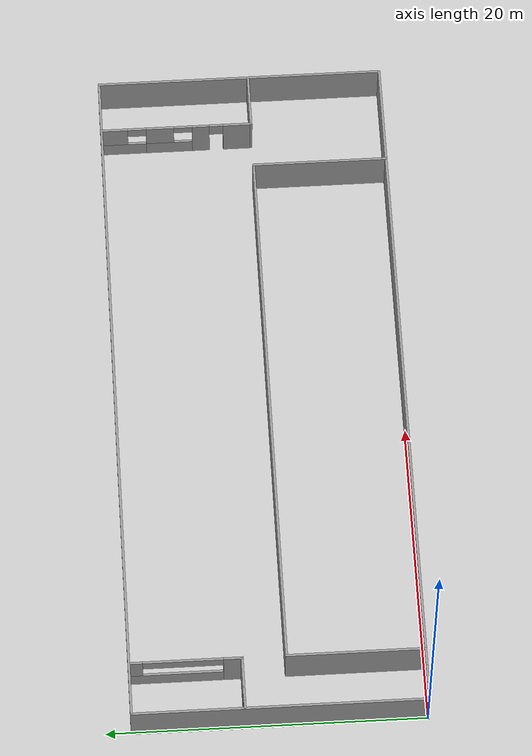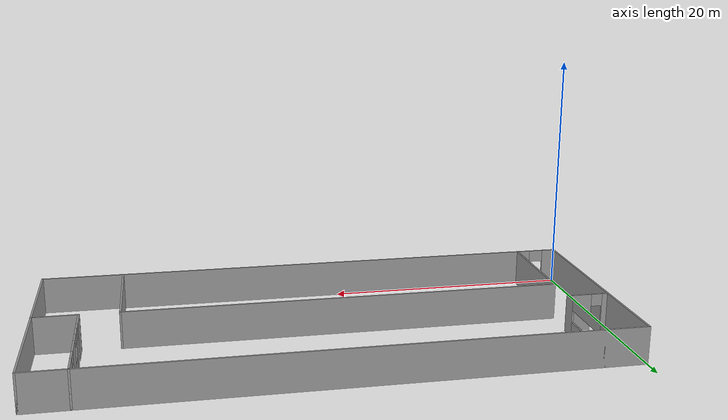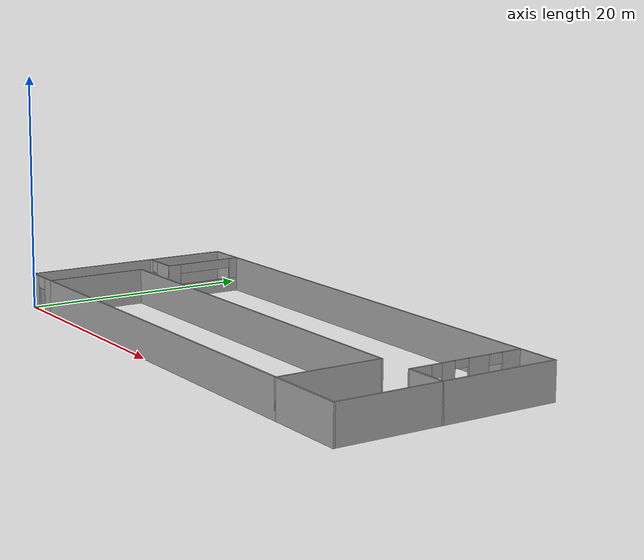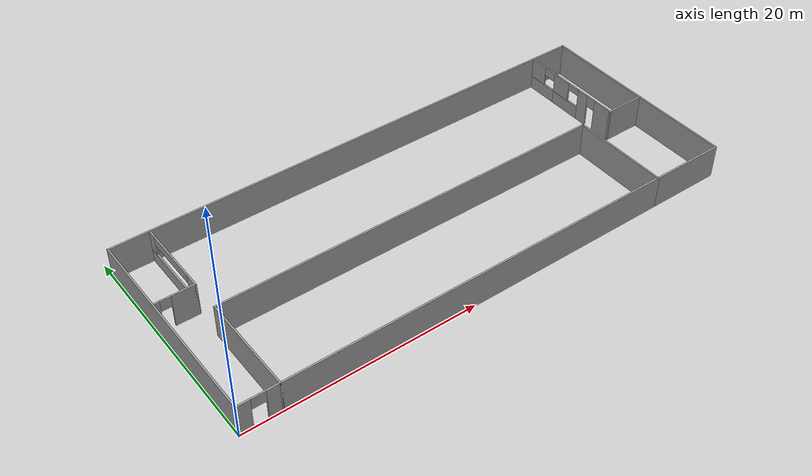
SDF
<?xml version='1.0'?>
<sdf version='1.7'>
  <model name='laboratótio_de_usinagem_modelo'>
    <pose>22.5 9.175 0 0 -0 0</pose>
    <link name='Wall_11'>
      <collision name='Wall_11_Collision'>
        <geometry>
          <box>
            <size>18.5 0.15 3</size>
          </box>
        </geometry>
        <pose>0 0 1.5 0 -0 0</pose>
      </collision>
      <visual name='Wall_11_Visual'>
        <pose>0 0 1.5 0 -0 0</pose>
        <geometry>
          <box>
            <size>18.5 0.15 3</size>
          </box>
        </geometry>
        <material>
          <script>
            <uri>file://media/materials/scripts/gazebo.material</uri>
            <name>Gazebo/Grey</name>
          </script>
          <ambient>1 1 1 1</ambient>
        </material>
        <meta>
          <layer>0</layer>
        </meta>
      </visual>
      <pose>22.5 0 0 0 -0 -1.5708</pose>
    </link>
    <link name='Wall_13'>
      <collision name='Wall_13_Collision'>
        <geometry>
          <box>
            <size>6.75 0.15 3</size>
          </box>
        </geometry>
        <pose>0 0 1.5 0 -0 0</pose>
      </collision>
      <visual name='Wall_13_Visual'>
        <pose>0 0 1.5 0 -0 0</pose>
        <geometry>
          <box>
            <size>6.75 0.15 3</size>
          </box>
        </geometry>
        <material>
          <script>
            <uri>file://media/materials/scripts/gazebo.material</uri>
            <name>Gazebo/Grey</name>
          </script>
          <ambient>1 1 1 1</ambient>
        </material>
        <meta>
          <layer>0</layer>
        </meta>
      </visual>
      <pose>19.2 -9.175 0 0 -0 3.14159</pose>
    </link>
    <link name='Wall_15'>
      <collision name='Wall_15_Collision'>
        <geometry>
          <box>
            <size>8.75 0.15 3</size>
          </box>
        </geometry>
        <pose>0 0 1.5 0 -0 0</pose>
      </collision>
      <visual name='Wall_15_Visual'>
        <pose>0 0 1.5 0 -0 0</pose>
        <geometry>
          <box>
            <size>8.75 0.15 3</size>
          </box>
        </geometry>
        <material>
          <script>
            <uri>file://media/materials/scripts/gazebo.material</uri>
            <name>Gazebo/Grey</name>
          </script>
          <ambient>1 1 1 1</ambient>
        </material>
        <meta>
          <layer>0</layer>
        </meta>
      </visual>
      <pose>15.9 -4.875 0 0 -0 1.5708</pose>
    </link>
    <link name='Wall_17'>
      <collision name='Wall_17_Collision'>
        <geometry>
          <box>
            <size>35.15 0.15 3</size>
          </box>
        </geometry>
        <pose>0 0 1.5 0 -0 0</pose>
      </collision>
      <visual name='Wall_17_Visual'>
        <pose>0 0 1.5 0 -0 0</pose>
        <geometry>
          <box>
            <size>35.15 0.15 3</size>
          </box>
        </geometry>
        <material>
          <script>
            <uri>file://media/materials/scripts/gazebo.material</uri>
            <name>Gazebo/Grey</name>
          </script>
          <ambient>1 1 1 1</ambient>
        </material>
        <meta>
          <layer>0</layer>
        </meta>
      </visual>
      <pose>-1.6 -0.575 0 0 -0 3.14159</pose>
    </link>
    <link name='Wall_19'>
      <collision name='Wall_19_Collision'>
        <geometry>
          <box>
            <size>35.15 0.15 3</size>
          </box>
        </geometry>
        <pose>0 0 1.5 0 -0 0</pose>
      </collision>
      <visual name='Wall_19_Visual'>
        <pose>0 0 1.5 0 -0 0</pose>
        <geometry>
          <box>
            <size>35.15 0.15 3</size>
          </box>
        </geometry>
        <material>
          <script>
            <uri>file://media/materials/scripts/gazebo.material</uri>
            <name>Gazebo/Grey</name>
          </script>
          <ambient>1 1 1 1</ambient>
        </material>
        <meta>
          <layer>0</layer>
        </meta>
      </visual>
      <pose>-1.6 -9.175 0 0 -0 0</pose>
    </link>
    <link name='Wall_21'>
      <pose>-20.8 2.175 0 0 -0 0</pose>
      <visual name='Wall_21_Visual_0'>
        <pose>-1.47924 0 1.5 0 -0 0</pose>
        <geometry>
          <box>
            <size>0.591518 0.15 3</size>
          </box>
        </geometry>
        <material>
          <script>
            <uri>file://media/materials/scripts/gazebo.material</uri>
            <name>Gazebo/Grey</name>
          </script>
          <ambient>1 1 1 1</ambient>
        </material>
        <meta>
          <layer>0</layer>
        </meta>
      </visual>
      <collision name='Wall_21_Collision_0'>
        <geometry>
          <box>
            <size>0.591518 0.15 3</size>
          </box>
        </geometry>
        <pose>-1.47924 0 1.5 0 -0 0</pose>
      </collision>
      <visual name='Wall_21_Visual_1'>
        <pose>0.745759 0 1.5 0 -0 0</pose>
        <geometry>
          <box>
            <size>2.05848 0.15 3</size>
          </box>
        </geometry>
        <material>
          <script>
            <uri>file://media/materials/scripts/gazebo.material</uri>
            <name>Gazebo/Grey</name>
          </script>
          <ambient>1 1 1 1</ambient>
        </material>
        <meta>
          <layer>0</layer>
        </meta>
      </visual>
      <collision name='Wall_21_Collision_1'>
        <geometry>
          <box>
            <size>2.05848 0.15 3</size>
          </box>
        </geometry>
        <pose>0.745759 0 1.5 0 -0 0</pose>
      </collision>
      <visual name='Wall_21_Visual_2'>
        <pose>-0.733482 0 2.5 0 -0 0</pose>
        <geometry>
          <box>
            <size>0.9 0.15 1</size>
          </box>
        </geometry>
        <material>
          <script>
            <uri>file://media/materials/scripts/gazebo.material</uri>
            <name>Gazebo/Grey</name>
          </script>
          <ambient>1 1 1 1</ambient>
        </material>
        <meta>
          <layer>0</layer>
        </meta>
      </visual>
      <collision name='Wall_21_Collision_2'>
        <geometry>
          <box>
            <size>0.9 0.15 1</size>
          </box>
        </geometry>
        <pose>-0.733482 0 2.5 0 -0 0</pose>
      </collision>
    </link>
    <link name='Wall_23'>
      <pose>-19.1 5.675 0 0 -0 1.5708</pose>
      <visual name='Wall_23_Visual_0'>
        <pose>-2.9625 0 1.5 0 -0 0</pose>
        <geometry>
          <box>
            <size>1.225 0.15 3</size>
          </box>
        </geometry>
        <material>
          <script>
            <uri>file://media/materials/scripts/gazebo.material</uri>
            <name>Gazebo/Grey</name>
          </script>
          <ambient>1 1 1 1</ambient>
        </material>
        <meta>
          <layer>0</layer>
        </meta>
      </visual>
      <collision name='Wall_23_Collision_0'>
        <geometry>
          <box>
            <size>1.225 0.15 3</size>
          </box>
        </geometry>
        <pose>-2.9625 0 1.5 0 -0 0</pose>
      </collision>
      <visual name='Wall_23_Visual_1'>
        <pose>0.6125 0 0.6 0 -0 0</pose>
        <geometry>
          <box>
            <size>5.925 0.15 1.2</size>
          </box>
        </geometry>
        <material>
          <script>
            <uri>file://media/materials/scripts/gazebo.material</uri>
            <name>Gazebo/Grey</name>
          </script>
          <ambient>1 1 1 1</ambient>
        </material>
        <meta>
          <layer>0</layer>
        </meta>
      </visual>
      <collision name='Wall_23_Collision_1'>
        <geometry>
          <box>
            <size>5.925 0.15 1.2</size>
          </box>
        </geometry>
        <pose>0.6125 0 0.6 0 -0 0</pose>
      </collision>
      <visual name='Wall_23_Visual_2'>
        <pose>3.1125 0 2.1 0 -0 0</pose>
        <geometry>
          <box>
            <size>0.925 0.15 1.8</size>
          </box>
        </geometry>
        <material>
          <script>
            <uri>file://media/materials/scripts/gazebo.material</uri>
            <name>Gazebo/Grey</name>
          </script>
          <ambient>1 1 1 1</ambient>
        </material>
        <meta>
          <layer>0</layer>
        </meta>
      </visual>
      <collision name='Wall_23_Collision_2'>
        <geometry>
          <box>
            <size>0.925 0.15 1.8</size>
          </box>
        </geometry>
        <pose>3.1125 0 2.1 0 -0 0</pose>
      </collision>
      <visual name='Wall_23_Visual_3'>
        <pose>0.15 0 2.6 0 -0 0</pose>
        <geometry>
          <box>
            <size>5 0.15 0.8</size>
          </box>
        </geometry>
        <material>
          <script>
            <uri>file://media/materials/scripts/gazebo.material</uri>
            <name>Gazebo/Grey</name>
          </script>
          <ambient>1 1 1 1</ambient>
        </material>
        <meta>
          <layer>0</layer>
        </meta>
      </visual>
      <collision name='Wall_23_Collision_3'>
        <geometry>
          <box>
            <size>5 0.15 0.8</size>
          </box>
        </geometry>
        <pose>0.15 0 2.6 0 -0 0</pose>
      </collision>
    </link>
    <link name='Wall_25'>
      <collision name='Wall_25_Collision'>
        <geometry>
          <box>
            <size>3.65 0.15 3</size>
          </box>
        </geometry>
        <pose>0 0 1.5 0 -0 0</pose>
      </collision>
      <visual name='Wall_25_Visual'>
        <pose>0 0 1.5 0 -0 0</pose>
        <geometry>
          <box>
            <size>3.65 0.15 3</size>
          </box>
        </geometry>
        <material>
          <script>
            <uri>file://media/materials/scripts/gazebo.material</uri>
            <name>Gazebo/Grey</name>
          </script>
          <ambient>1 1 1 1</ambient>
        </material>
        <meta>
          <layer>0</layer>
        </meta>
      </visual>
      <pose>20.75 -0.575 0 0 -0 3.14159</pose>
    </link>
    <link name='Wall_27'>
      <pose>19 4.3 0 0 -0 1.5708</pose>
      <visual name='Wall_27_Visual_0'>
        <pose>-3.9989 0 1.5 0 -0 0</pose>
        <geometry>
          <box>
            <size>1.90221 0.15 3</size>
          </box>
        </geometry>
        <material>
          <script>
            <uri>file://media/materials/scripts/gazebo.material</uri>
            <name>Gazebo/Grey</name>
          </script>
          <ambient>1 1 1 1</ambient>
        </material>
        <meta>
          <layer>0</layer>
        </meta>
      </visual>
      <collision name='Wall_27_Collision_0'>
        <geometry>
          <box>
            <size>1.90221 0.15 3</size>
          </box>
        </geometry>
        <pose>-3.9989 0 1.5 0 -0 0</pose>
      </collision>
      <visual name='Wall_27_Visual_1'>
        <pose>-1.58963 0 1.5 0 -0 0</pose>
        <geometry>
          <box>
            <size>1.11632 0.15 3</size>
          </box>
        </geometry>
        <material>
          <script>
            <uri>file://media/materials/scripts/gazebo.material</uri>
            <name>Gazebo/Grey</name>
          </script>
          <ambient>1 1 1 1</ambient>
        </material>
        <meta>
          <layer>0</layer>
        </meta>
      </visual>
      <collision name='Wall_27_Collision_1'>
        <geometry>
          <box>
            <size>1.11632 0.15 3</size>
          </box>
        </geometry>
        <pose>-1.58963 0 1.5 0 -0 0</pose>
      </collision>
      <visual name='Wall_27_Visual_2'>
        <pose>0.470975 0 0.6005 0 -0 0</pose>
        <geometry>
          <box>
            <size>3.00489 0.15 1.201</size>
          </box>
        </geometry>
        <material>
          <script>
            <uri>file://media/materials/scripts/gazebo.material</uri>
            <name>Gazebo/Grey</name>
          </script>
          <ambient>1 1 1 1</ambient>
        </material>
        <meta>
          <layer>0</layer>
        </meta>
      </visual>
      <collision name='Wall_27_Collision_2'>
        <geometry>
          <box>
            <size>3.00489 0.15 1.201</size>
          </box>
        </geometry>
        <pose>0.470975 0 0.6005 0 -0 0</pose>
      </collision>
      <visual name='Wall_27_Visual_3'>
        <pose>3.46171 0 0.6005 0 -0 0</pose>
        <geometry>
          <box>
            <size>2.97658 0.15 1.201</size>
          </box>
        </geometry>
        <material>
          <script>
            <uri>file://media/materials/scripts/gazebo.material</uri>
            <name>Gazebo/Grey</name>
          </script>
          <ambient>1 1 1 1</ambient>
        </material>
        <meta>
          <layer>0</layer>
        </meta>
      </visual>
      <collision name='Wall_27_Collision_3'>
        <geometry>
          <box>
            <size>2.97658 0.15 1.201</size>
          </box>
        </geometry>
        <pose>3.46171 0 0.6005 0 -0 0</pose>
      </collision>
      <visual name='Wall_27_Visual_4'>
        <pose>4.06171 0 2.1005 0 -0 0</pose>
        <geometry>
          <box>
            <size>1.77658 0.15 1.799</size>
          </box>
        </geometry>
        <material>
          <script>
            <uri>file://media/materials/scripts/gazebo.material</uri>
            <name>Gazebo/Grey</name>
          </script>
          <ambient>1 1 1 1</ambient>
        </material>
        <meta>
          <layer>0</layer>
        </meta>
      </visual>
      <collision name='Wall_27_Collision_4'>
        <geometry>
          <box>
            <size>1.77658 0.15 1.799</size>
          </box>
        </geometry>
        <pose>4.06171 0 2.1005 0 -0 0</pose>
      </collision>
      <visual name='Wall_27_Visual_5'>
        <pose>1.07098 0 2.1005 0 -0 0</pose>
        <geometry>
          <box>
            <size>1.80489 0.15 1.799</size>
          </box>
        </geometry>
        <material>
          <script>
            <uri>file://media/materials/scripts/gazebo.material</uri>
            <name>Gazebo/Grey</name>
          </script>
          <ambient>1 1 1 1</ambient>
        </material>
        <meta>
          <layer>0</layer>
        </meta>
      </visual>
      <collision name='Wall_27_Collision_5'>
        <geometry>
          <box>
            <size>1.80489 0.15 1.799</size>
          </box>
        </geometry>
        <pose>1.07098 0 2.1005 0 -0 0</pose>
      </collision>
      <visual name='Wall_27_Visual_6'>
        <pose>1.07098 0 2.1005 0 -0 0</pose>
        <geometry>
          <box>
            <size>1.80489 0.15 1.799</size>
          </box>
        </geometry>
        <material>
          <script>
            <uri>file://media/materials/scripts/gazebo.material</uri>
            <name>Gazebo/Grey</name>
          </script>
          <ambient>1 1 1 1</ambient>
        </material>
        <meta>
          <layer>0</layer>
        </meta>
      </visual>
      <collision name='Wall_27_Collision_6'>
        <geometry>
          <box>
            <size>1.80489 0.15 1.799</size>
          </box>
        </geometry>
        <pose>1.07098 0 2.1005 0 -0 0</pose>
      </collision>
      <visual name='Wall_27_Visual_7'>
        <pose>-2.59779 0 2.5 0 -0 0</pose>
        <geometry>
          <box>
            <size>0.9 0.15 1</size>
          </box>
        </geometry>
        <material>
          <script>
            <uri>file://media/materials/scripts/gazebo.material</uri>
            <name>Gazebo/Grey</name>
          </script>
          <ambient>1 1 1 1</ambient>
        </material>
        <meta>
          <layer>0</layer>
        </meta>
      </visual>
      <collision name='Wall_27_Collision_7'>
        <geometry>
          <box>
            <size>0.9 0.15 1</size>
          </box>
        </geometry>
        <pose>-2.59779 0 2.5 0 -0 0</pose>
      </collision>
      <visual name='Wall_27_Visual_8'>
        <pose>2.57342 0 2.6005 0 -0 0</pose>
        <geometry>
          <box>
            <size>1.2 0.15 0.799</size>
          </box>
        </geometry>
        <material>
          <script>
            <uri>file://media/materials/scripts/gazebo.material</uri>
            <name>Gazebo/Grey</name>
          </script>
          <ambient>1 1 1 1</ambient>
        </material>
        <meta>
          <layer>0</layer>
        </meta>
      </visual>
      <collision name='Wall_27_Collision_8'>
        <geometry>
          <box>
            <size>1.2 0.15 0.799</size>
          </box>
        </geometry>
        <pose>2.57342 0 2.6005 0 -0 0</pose>
      </collision>
      <visual name='Wall_27_Visual_9'>
        <pose>2.57342 0 2.6005 0 -0 0</pose>
        <geometry>
          <box>
            <size>1.2 0.15 0.799</size>
          </box>
        </geometry>
        <material>
          <script>
            <uri>file://media/materials/scripts/gazebo.material</uri>
            <name>Gazebo/Grey</name>
          </script>
          <ambient>1 1 1 1</ambient>
        </material>
        <meta>
          <layer>0</layer>
        </meta>
      </visual>
      <collision name='Wall_27_Collision_9'>
        <geometry>
          <box>
            <size>1.2 0.15 0.799</size>
          </box>
        </geometry>
        <pose>2.57342 0 2.6005 0 -0 0</pose>
      </collision>
      <visual name='Wall_27_Visual_10'>
        <pose>-0.431472 0 2.7005 0 -0 0</pose>
        <geometry>
          <box>
            <size>1.2 0.15 0.599</size>
          </box>
        </geometry>
        <material>
          <script>
            <uri>file://media/materials/scripts/gazebo.material</uri>
            <name>Gazebo/Grey</name>
          </script>
          <ambient>1 1 1 1</ambient>
        </material>
        <meta>
          <layer>0</layer>
        </meta>
      </visual>
      <collision name='Wall_27_Collision_10'>
        <geometry>
          <box>
            <size>1.2 0.15 0.599</size>
          </box>
        </geometry>
        <pose>-0.431472 0 2.7005 0 -0 0</pose>
      </collision>
    </link>
    <link name='Wall_3'>
      <pose>-20.8 -9.175 0 0 -0 0</pose>
      <visual name='Wall_3_Visual_0'>
        <pose>-1.18973 0 1.5 0 -0 0</pose>
        <geometry>
          <box>
            <size>1.17054 0.15 3</size>
          </box>
        </geometry>
        <material>
          <script>
            <uri>file://media/materials/scripts/gazebo.material</uri>
            <name>Gazebo/Grey</name>
          </script>
          <ambient>1 1 1 1</ambient>
        </material>
        <meta>
          <layer>0</layer>
        </meta>
      </visual>
      <collision name='Wall_3_Collision_0'>
        <geometry>
          <box>
            <size>1.17054 0.15 3</size>
          </box>
        </geometry>
        <pose>-1.18973 0 1.5 0 -0 0</pose>
      </collision>
      <visual name='Wall_3_Visual_1'>
        <pose>1.18527 0 1.5 0 -0 0</pose>
        <geometry>
          <box>
            <size>1.17946 0.15 3</size>
          </box>
        </geometry>
        <material>
          <script>
            <uri>file://media/materials/scripts/gazebo.material</uri>
            <name>Gazebo/Grey</name>
          </script>
          <ambient>1 1 1 1</ambient>
        </material>
        <meta>
          <layer>0</layer>
        </meta>
      </visual>
      <collision name='Wall_3_Collision_1'>
        <geometry>
          <box>
            <size>1.17946 0.15 3</size>
          </box>
        </geometry>
        <pose>1.18527 0 1.5 0 -0 0</pose>
      </collision>
      <visual name='Wall_3_Visual_2'>
        <pose>-0.00446 0 2.5 0 -0 0</pose>
        <geometry>
          <box>
            <size>1.2 0.15 1</size>
          </box>
        </geometry>
        <material>
          <script>
            <uri>file://media/materials/scripts/gazebo.material</uri>
            <name>Gazebo/Grey</name>
          </script>
          <ambient>1 1 1 1</ambient>
        </material>
        <meta>
          <layer>0</layer>
        </meta>
      </visual>
      <collision name='Wall_3_Collision_2'>
        <geometry>
          <box>
            <size>1.2 0.15 1</size>
          </box>
        </geometry>
        <pose>-0.00446 0 2.5 0 -0 0</pose>
      </collision>
    </link>
    <link name='Wall_5'>
      <collision name='Wall_5_Collision'>
        <geometry>
          <box>
            <size>8.75 0.15 3</size>
          </box>
        </geometry>
        <pose>0 0 1.5 0 -0 0</pose>
      </collision>
      <visual name='Wall_5_Visual'>
        <pose>0 0 1.5 0 -0 0</pose>
        <geometry>
          <box>
            <size>8.75 0.15 3</size>
          </box>
        </geometry>
        <material>
          <script>
            <uri>file://media/materials/scripts/gazebo.material</uri>
            <name>Gazebo/Grey</name>
          </script>
          <ambient>1 1 1 1</ambient>
        </material>
        <meta>
          <layer>0</layer>
        </meta>
      </visual>
      <pose>-19.1 -4.875 0 0 -0 1.5708</pose>
    </link>
    <link name='Wall_7'>
      <collision name='Wall_7_Collision'>
        <geometry>
          <box>
            <size>18.5 0.15 3</size>
          </box>
        </geometry>
        <pose>0 0 1.5 0 -0 0</pose>
      </collision>
      <visual name='Wall_7_Visual'>
        <pose>0 0 1.5 0 -0 0</pose>
        <geometry>
          <box>
            <size>18.5 0.15 3</size>
          </box>
        </geometry>
        <material>
          <script>
            <uri>file://media/materials/scripts/gazebo.material</uri>
            <name>Gazebo/Grey</name>
          </script>
          <ambient>1 1 1 1</ambient>
        </material>
        <meta>
          <layer>0</layer>
        </meta>
      </visual>
      <pose>-22.5 0 0 0 -0 1.5708</pose>
    </link>
    <link name='Wall_9'>
      <collision name='Wall_9_Collision'>
        <geometry>
          <box>
            <size>45.15 0.15 3</size>
          </box>
        </geometry>
        <pose>0 0 1.5 0 -0 0</pose>
      </collision>
      <visual name='Wall_9_Visual'>
        <pose>0 0 1.5 0 -0 0</pose>
        <geometry>
          <box>
            <size>45.15 0.15 3</size>
          </box>
        </geometry>
        <material>
          <script>
            <uri>file://media/materials/scripts/gazebo.material</uri>
            <name>Gazebo/Grey</name>
          </script>
          <ambient>1 1 1 1</ambient>
        </material>
        <meta>
          <layer>0</layer>
        </meta>
      </visual>
      <pose>0 9.175 0 0 -0 0</pose>
    </link>
    <static>1</static>
  </model>
</sdf>
